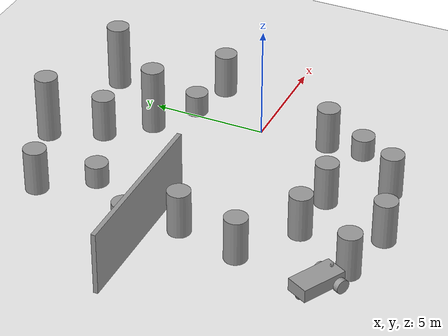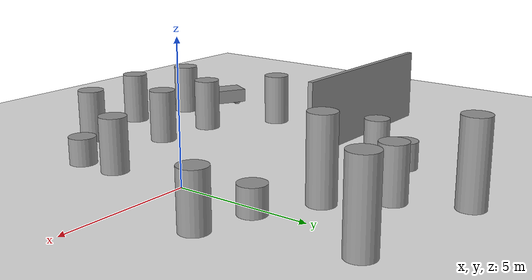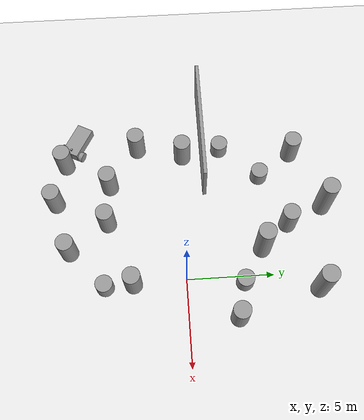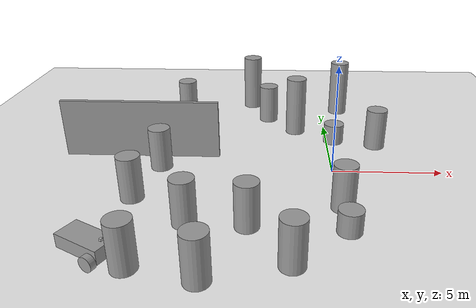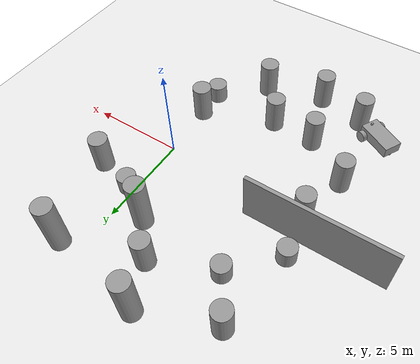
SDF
<sdf version="1.6">
 <world name="default">
  <model name="ground_plane">
   <static>1</static>
   <link name="link">
    <collision name="collision">
     <geometry><plane><normal>0 0 1</normal><size>100 100</size></plane></geometry>
     <surface><friction><ode><mu>100</mu><mu2>50</mu2></ode></friction></surface>
    </collision>
    <visual name="visual">
     <geometry><plane><normal>0 0 1</normal><size>100 100</size></plane></geometry>
     <material>
      <script><uri>file://media/materials/scripts/gazebo.material</uri><name>Gazebo/White</name></script>
     </material>
    </visual>
   </link>
  </model>
  <model name="unit_cylinder_5_clone">
   <link name="link">
    <inertial>
     <mass>1</mass>
     <inertia><ixx>0.145833</ixx><ixy>0</ixy><ixz>0</ixz><iyy>0.145833</iyy><iyz>0</iyz><izz>0.125</izz></inertia>
    </inertial>
    <visual name="visual">
     <geometry><cylinder><radius>0.5</radius><length>2</length></cylinder></geometry>
     <material>
      <script><name>Gazebo/Grey</name><uri>file://media/materials/scripts/gazebo.material</uri></script>
      <ambient>0.3 0.3 0.3 1</ambient>
      <diffuse>0.7 0.7 0.7 1</diffuse>
      <specular>0.01 0.01 0.01 1</specular>
      <emissive>0 0 0 1</emissive>
      <shader type="vertex"><normal_map>__default__</normal_map></shader>
     </material>
    </visual>
    <collision name="collision">
     <geometry><cylinder><radius>0.5</radius><length>2</length></cylinder></geometry>
     <surface>
      <friction>
       <ode><mu>1</mu><mu2>1</mu2><fdir1>0 0 0</fdir1><slip1>0</slip1><slip2>0</slip2></ode>
       <torsional>
        <coefficient>1</coefficient>
        <patch_radius>0</patch_radius>
        <surface_radius>0</surface_radius>
        <use_patch_radius>1</use_patch_radius>
        <ode><slip>0</slip></ode>
       </torsional>
      </friction>
      <bounce><restitution_coefficient>0</restitution_coefficient><threshold>1e+06</threshold></bounce>
      <contact>
       <collide_without_contact>0</collide_without_contact>
       <collide_without_contact_bitmask>1</collide_without_contact_bitmask>
       <collide_bitmask>1</collide_bitmask>
       <ode>
        <soft_cfm>0</soft_cfm>
        <soft_erp>0.2</soft_erp>
        <kp>1e+13</kp>
        <kd>1</kd>
        <max_vel>0.01</max_vel>
        <min_depth>0</min_depth>
       </ode>
       <bullet>
        <split_impulse>1</split_impulse>
        <split_impulse_penetration_threshold>-0.01</split_impulse_penetration_threshold>
        <soft_cfm>0</soft_cfm>
        <soft_erp>0.2</soft_erp>
        <kp>1e+13</kp>
        <kd>1</kd>
       </bullet>
      </contact>
     </surface>
    </collision>
   </link>
   <static>0</static>
   <pose>2.38828 2.78335 0.999884 2.2e-05 -1e-06 0.002315</pose>
  </model>
  <model name="unit_cylinder_5_clone_0">
   <link name="link">
    <inertial>
     <mass>1</mass>
     <inertia><ixx>0.145833</ixx><ixy>0</ixy><ixz>0</ixz><iyy>0.145833</iyy><iyz>0</iyz><izz>0.125</izz></inertia>
    </inertial>
    <visual name="visual">
     <geometry><cylinder><radius>0.5</radius><length>2</length></cylinder></geometry>
     <material>
      <script><name>Gazebo/Grey</name><uri>file://media/materials/scripts/gazebo.material</uri></script>
      <ambient>0.3 0.3 0.3 1</ambient>
      <diffuse>0.7 0.7 0.7 1</diffuse>
      <specular>0.01 0.01 0.01 1</specular>
      <emissive>0 0 0 1</emissive>
      <shader type="vertex"><normal_map>__default__</normal_map></shader>
     </material>
    </visual>
    <collision name="collision">
     <geometry><cylinder><radius>0.5</radius><length>2</length></cylinder></geometry>
     <surface>
      <friction>
       <ode><mu>1</mu><mu2>1</mu2><fdir1>0 0 0</fdir1><slip1>0</slip1><slip2>0</slip2></ode>
       <torsional>
        <coefficient>1</coefficient>
        <patch_radius>0</patch_radius>
        <surface_radius>0</surface_radius>
        <use_patch_radius>1</use_patch_radius>
        <ode><slip>0</slip></ode>
       </torsional>
      </friction>
      <bounce><restitution_coefficient>0</restitution_coefficient><threshold>1e+06</threshold></bounce>
      <contact>
       <collide_without_contact>0</collide_without_contact>
       <collide_without_contact_bitmask>1</collide_without_contact_bitmask>
       <collide_bitmask>1</collide_bitmask>
       <ode>
        <soft_cfm>0</soft_cfm>
        <soft_erp>0.2</soft_erp>
        <kp>1e+13</kp>
        <kd>1</kd>
        <max_vel>0.01</max_vel>
        <min_depth>0</min_depth>
       </ode>
       <bullet>
        <split_impulse>1</split_impulse>
        <split_impulse_penetration_threshold>-0.01</split_impulse_penetration_threshold>
        <soft_cfm>0</soft_cfm>
        <soft_erp>0.2</soft_erp>
        <kp>1e+13</kp>
        <kd>1</kd>
       </bullet>
      </contact>
     </surface>
    </collision>
   </link>
   <static>0</static>
   <pose>0.149287 -3.03613 0.999884 2.2e-05 -1e-06 0.002298</pose>
  </model>
  <model name="unit_cylinder_5_clone_3">
   <link name="link">
    <inertial>
     <mass>1</mass>
     <inertia><ixx>0.145833</ixx><ixy>0</ixy><ixz>0</ixz><iyy>0.145833</iyy><iyz>0</iyz><izz>0.125</izz></inertia>
    </inertial>
    <visual name="visual">
     <geometry><cylinder><radius>0.5</radius><length>2</length></cylinder></geometry>
     <material>
      <script><name>Gazebo/Grey</name><uri>file://media/materials/scripts/gazebo.material</uri></script>
      <ambient>0.3 0.3 0.3 1</ambient>
      <diffuse>0.7 0.7 0.7 1</diffuse>
      <specular>0.01 0.01 0.01 1</specular>
      <emissive>0 0 0 1</emissive>
      <shader type="vertex"><normal_map>__default__</normal_map></shader>
     </material>
    </visual>
    <collision name="collision">
     <geometry><cylinder><radius>0.5</radius><length>2</length></cylinder></geometry>
     <surface>
      <friction>
       <ode><mu>1</mu><mu2>1</mu2><fdir1>0 0 0</fdir1><slip1>0</slip1><slip2>0</slip2></ode>
       <torsional>
        <coefficient>1</coefficient>
        <patch_radius>0</patch_radius>
        <surface_radius>0</surface_radius>
        <use_patch_radius>1</use_patch_radius>
        <ode><slip>0</slip></ode>
       </torsional>
      </friction>
      <bounce><restitution_coefficient>0</restitution_coefficient><threshold>1e+06</threshold></bounce>
      <contact>
       <collide_without_contact>0</collide_without_contact>
       <collide_without_contact_bitmask>1</collide_without_contact_bitmask>
       <collide_bitmask>1</collide_bitmask>
       <ode>
        <soft_cfm>0</soft_cfm>
        <soft_erp>0.2</soft_erp>
        <kp>1e+13</kp>
        <kd>1</kd>
        <max_vel>0.01</max_vel>
        <min_depth>0</min_depth>
       </ode>
       <bullet>
        <split_impulse>1</split_impulse>
        <split_impulse_penetration_threshold>-0.01</split_impulse_penetration_threshold>
        <soft_cfm>0</soft_cfm>
        <soft_erp>0.2</soft_erp>
        <kp>1e+13</kp>
        <kd>1</kd>
       </bullet>
      </contact>
     </surface>
    </collision>
   </link>
   <static>0</static>
   <pose>-3.66733 -4.47285 0.999884 2.2e-05 -1e-06 0.000409</pose>
  </model>
  <model name="unit_cylinder_5_clone_4">
   <link name="link">
    <inertial>
     <mass>1</mass>
     <inertia><ixx>0.145833</ixx><ixy>0</ixy><ixz>0</ixz><iyy>0.145833</iyy><iyz>0</iyz><izz>0.125</izz></inertia>
    </inertial>
    <visual name="visual">
     <geometry><cylinder><radius>0.5</radius><length>2</length></cylinder></geometry>
     <material>
      <script><name>Gazebo/Grey</name><uri>file://media/materials/scripts/gazebo.material</uri></script>
      <ambient>0.3 0.3 0.3 1</ambient>
      <diffuse>0.7 0.7 0.7 1</diffuse>
      <specular>0.01 0.01 0.01 1</specular>
      <emissive>0 0 0 1</emissive>
      <shader type="vertex"><normal_map>__default__</normal_map></shader>
     </material>
    </visual>
    <collision name="collision">
     <geometry><cylinder><radius>0.5</radius><length>2</length></cylinder></geometry>
     <surface>
      <friction>
       <ode><mu>1</mu><mu2>1</mu2><fdir1>0 0 0</fdir1><slip1>0</slip1><slip2>0</slip2></ode>
       <torsional>
        <coefficient>1</coefficient>
        <patch_radius>0</patch_radius>
        <surface_radius>0</surface_radius>
        <use_patch_radius>1</use_patch_radius>
        <ode><slip>0</slip></ode>
       </torsional>
      </friction>
      <bounce><restitution_coefficient>0</restitution_coefficient><threshold>1e+06</threshold></bounce>
      <contact>
       <collide_without_contact>0</collide_without_contact>
       <collide_without_contact_bitmask>1</collide_without_contact_bitmask>
       <collide_bitmask>1</collide_bitmask>
       <ode>
        <soft_cfm>0</soft_cfm>
        <soft_erp>0.2</soft_erp>
        <kp>1e+13</kp>
        <kd>1</kd>
        <max_vel>0.01</max_vel>
        <min_depth>0</min_depth>
       </ode>
       <bullet>
        <split_impulse>1</split_impulse>
        <split_impulse_penetration_threshold>-0.01</split_impulse_penetration_threshold>
        <soft_cfm>0</soft_cfm>
        <soft_erp>0.2</soft_erp>
        <kp>1e+13</kp>
        <kd>1</kd>
       </bullet>
      </contact>
     </surface>
    </collision>
   </link>
   <static>0</static>
   <pose>-7.93374 0.169664 0.999884 2.2e-05 -1e-06 -0.003062</pose>
  </model>
  <model name="unit_cylinder_5_clone_5">
   <link name="link">
    <inertial>
     <mass>1</mass>
     <inertia><ixx>0.145833</ixx><ixy>0</ixy><ixz>0</ixz><iyy>0.145833</iyy><iyz>0</iyz><izz>0.125</izz></inertia>
    </inertial>
    <visual name="visual">
     <geometry><cylinder><radius>0.5</radius><length>2</length></cylinder></geometry>
     <material>
      <script><name>Gazebo/Grey</name><uri>file://media/materials/scripts/gazebo.material</uri></script>
      <ambient>0.3 0.3 0.3 1</ambient>
      <diffuse>0.7 0.7 0.7 1</diffuse>
      <specular>0.01 0.01 0.01 1</specular>
      <emissive>0 0 0 1</emissive>
      <shader type="vertex"><normal_map>__default__</normal_map></shader>
     </material>
    </visual>
    <collision name="collision">
     <geometry><cylinder><radius>0.5</radius><length>2</length></cylinder></geometry>
     <surface>
      <friction>
       <ode><mu>1</mu><mu2>1</mu2><fdir1>0 0 0</fdir1><slip1>0</slip1><slip2>0</slip2></ode>
       <torsional>
        <coefficient>1</coefficient>
        <patch_radius>0</patch_radius>
        <surface_radius>0</surface_radius>
        <use_patch_radius>1</use_patch_radius>
        <ode><slip>0</slip></ode>
       </torsional>
      </friction>
      <bounce><restitution_coefficient>0</restitution_coefficient><threshold>1e+06</threshold></bounce>
      <contact>
       <collide_without_contact>0</collide_without_contact>
       <collide_without_contact_bitmask>1</collide_without_contact_bitmask>
       <collide_bitmask>1</collide_bitmask>
       <ode>
        <soft_cfm>0</soft_cfm>
        <soft_erp>0.2</soft_erp>
        <kp>1e+13</kp>
        <kd>1</kd>
        <max_vel>0.01</max_vel>
        <min_depth>0</min_depth>
       </ode>
       <bullet>
        <split_impulse>1</split_impulse>
        <split_impulse_penetration_threshold>-0.01</split_impulse_penetration_threshold>
        <soft_cfm>0</soft_cfm>
        <soft_erp>0.2</soft_erp>
        <kp>1e+13</kp>
        <kd>1</kd>
       </bullet>
      </contact>
     </surface>
    </collision>
   </link>
   <static>0</static>
   <pose>-8.58869 -2.60629 0.999884 2.2e-05 -1e-06 -0.00547</pose>
  </model>
  <model name="unit_cylinder_0">
   <pose>0.360811 3.27692 0.499884 3e-06 -3e-06 -0.000418</pose>
   <link name="link">
    <inertial>
     <mass>1</mass>
     <inertia><ixx>0.145833</ixx><ixy>0</ixy><ixz>0</ixz><iyy>0.145833</iyy><iyz>0</iyz><izz>0.125</izz></inertia>
    </inertial>
    <collision name="collision">
     <geometry><cylinder><radius>0.5</radius><length>1</length></cylinder></geometry>
    </collision>
    <visual name="visual">
     <geometry><cylinder><radius>0.5</radius><length>1</length></cylinder></geometry>
     <material>
      <script><name>Gazebo/Grey</name><uri>file://media/materials/scripts/gazebo.material</uri></script>
     </material>
    </visual>
   </link>
  </model>
  <model name="unit_cylinder_1">
   <pose>0.210065 -4.63987 0.499884 3e-06 -3e-06 -0.000165</pose>
   <link name="link">
    <inertial>
     <mass>1</mass>
     <inertia><ixx>0.145833</ixx><ixy>0</ixy><ixz>0</ixz><iyy>0.145833</iyy><iyz>0</iyz><izz>0.125</izz></inertia>
    </inertial>
    <collision name="collision">
     <geometry><cylinder><radius>0.5</radius><length>1</length></cylinder></geometry>
    </collision>
    <visual name="visual">
     <geometry><cylinder><radius>0.5</radius><length>1</length></cylinder></geometry>
     <material>
      <script><name>Gazebo/Grey</name><uri>file://media/materials/scripts/gazebo.material</uri></script>
     </material>
    </visual>
   </link>
  </model>
  <model name="unit_cylinder_1_clone_0">
   <pose>-6.29638 4.76436 0.499972 -5.4e-05 5.5e-05 -0.000122</pose>
   <link name="link">
    <inertial>
     <mass>1</mass>
     <inertia><ixx>0.145833</ixx><ixy>0</ixy><ixz>0</ixz><iyy>0.145833</iyy><iyz>0</iyz><izz>0.125</izz></inertia>
    </inertial>
    <collision name="collision">
     <geometry><cylinder><radius>0.5</radius><length>1</length></cylinder></geometry>
    </collision>
    <visual name="visual">
     <geometry><cylinder><radius>0.5</radius><length>1</length></cylinder></geometry>
     <material>
      <script><name>Gazebo/Grey</name><uri>file://media/materials/scripts/gazebo.material</uri></script>
     </material>
    </visual>
   </link>
  </model>
  <model name="unit_cylinder_1_clone_1">
   <pose>-8.33577 2.47754 0.499972 -5.4e-05 5.5e-05 0.001407</pose>
   <link name="link">
    <inertial>
     <mass>1</mass>
     <inertia><ixx>0.145833</ixx><ixy>0</ixy><ixz>0</ixz><iyy>0.145833</iyy><iyz>0</iyz><izz>0.125</izz></inertia>
    </inertial>
    <collision name="collision">
     <geometry><cylinder><radius>0.5</radius><length>1</length></cylinder></geometry>
    </collision>
    <visual name="visual">
     <geometry><cylinder><radius>0.5</radius><length>1</length></cylinder></geometry>
     <material>
      <script><name>Gazebo/Grey</name><uri>file://media/materials/scripts/gazebo.material</uri></script>
     </material>
    </visual>
   </link>
  </model>
  <model name="unit_cylinder_5_clone_1_clone_0">
   <link name="link">
    <inertial>
     <mass>1</mass>
     <inertia><ixx>0.145833</ixx><ixy>0</ixy><ixz>0</ixz><iyy>0.145833</iyy><iyz>0</iyz><izz>0.125</izz></inertia>
    </inertial>
    <visual name="visual">
     <geometry><cylinder><radius>0.5</radius><length>2</length></cylinder></geometry>
     <material>
      <script><name>Gazebo/Grey</name><uri>file://media/materials/scripts/gazebo.material</uri></script>
      <ambient>0.3 0.3 0.3 1</ambient>
      <diffuse>0.7 0.7 0.7 1</diffuse>
      <specular>0.01 0.01 0.01 1</specular>
      <emissive>0 0 0 1</emissive>
      <shader type="vertex"><normal_map>__default__</normal_map></shader>
     </material>
    </visual>
    <collision name="collision">
     <geometry><cylinder><radius>0.5</radius><length>2</length></cylinder></geometry>
     <surface>
      <friction>
       <ode><mu>1</mu><mu2>1</mu2><fdir1>0 0 0</fdir1><slip1>0</slip1><slip2>0</slip2></ode>
       <torsional>
        <coefficient>1</coefficient>
        <patch_radius>0</patch_radius>
        <surface_radius>0</surface_radius>
        <use_patch_radius>1</use_patch_radius>
        <ode><slip>0</slip></ode>
       </torsional>
      </friction>
      <bounce><restitution_coefficient>0</restitution_coefficient><threshold>1e+06</threshold></bounce>
      <contact>
       <collide_without_contact>0</collide_without_contact>
       <collide_without_contact_bitmask>1</collide_without_contact_bitmask>
       <collide_bitmask>1</collide_bitmask>
       <ode>
        <soft_cfm>0</soft_cfm>
        <soft_erp>0.2</soft_erp>
        <kp>1e+13</kp>
        <kd>1</kd>
        <max_vel>0.01</max_vel>
        <min_depth>0</min_depth>
       </ode>
       <bullet>
        <split_impulse>1</split_impulse>
        <split_impulse_penetration_threshold>-0.01</split_impulse_penetration_threshold>
        <soft_cfm>0</soft_cfm>
        <soft_erp>0.2</soft_erp>
        <kp>1e+13</kp>
        <kd>1</kd>
       </bullet>
      </contact>
     </surface>
    </collision>
   </link>
   <static>0</static>
   <pose>-3.04049 6.13018 0.999884 2.2e-05 -1e-06 -0.001363</pose>
  </model>
  <model name="unit_cylinder_0_0_clone_clone">
   <link name="link">
    <inertial>
     <mass>1</mass>
     <inertia><ixx>0.145833</ixx><ixy>0</ixy><ixz>0</ixz><iyy>0.145833</iyy><iyz>0</iyz><izz>0.125</izz></inertia>
    </inertial>
    <visual name="visual">
     <geometry><cylinder><radius>0.5</radius><length>3</length></cylinder></geometry>
     <material>
      <script><name>Gazebo/Grey</name><uri>file://media/materials/scripts/gazebo.material</uri></script>
      <ambient>0.3 0.3 0.3 1</ambient>
      <diffuse>0.7 0.7 0.7 1</diffuse>
      <specular>0.01 0.01 0.01 1</specular>
      <emissive>0 0 0 1</emissive>
      <shader type="vertex"><normal_map>__default__</normal_map></shader>
     </material>
    </visual>
    <collision name="collision">
     <geometry><cylinder><radius>0.5</radius><length>3</length></cylinder></geometry>
     <surface>
      <friction>
       <ode><mu>1</mu><mu2>1</mu2><fdir1>0 0 0</fdir1><slip1>0</slip1><slip2>0</slip2></ode>
       <torsional>
        <coefficient>1</coefficient>
        <patch_radius>0</patch_radius>
        <surface_radius>0</surface_radius>
        <use_patch_radius>1</use_patch_radius>
        <ode><slip>0</slip></ode>
       </torsional>
      </friction>
      <bounce><restitution_coefficient>0</restitution_coefficient><threshold>1e+06</threshold></bounce>
      <contact>
       <collide_without_contact>0</collide_without_contact>
       <collide_without_contact_bitmask>1</collide_without_contact_bitmask>
       <collide_bitmask>1</collide_bitmask>
       <ode>
        <soft_cfm>0</soft_cfm>
        <soft_erp>0.2</soft_erp>
        <kp>1e+13</kp>
        <kd>1</kd>
        <max_vel>0.01</max_vel>
        <min_depth>0</min_depth>
       </ode>
       <bullet>
        <split_impulse>1</split_impulse>
        <split_impulse_penetration_threshold>-0.01</split_impulse_penetration_threshold>
        <soft_cfm>0</soft_cfm>
        <soft_erp>0.2</soft_erp>
        <kp>1e+13</kp>
        <kd>1</kd>
       </bullet>
      </contact>
     </surface>
    </collision>
   </link>
   <static>0</static>
   <pose>1.00231 7.45946 1.49988 4.7e-05 -4e-06 -0.006467</pose>
  </model>
  <model name="unit_cylinder_0_0_clone_clone_0">
   <link name="link">
    <inertial>
     <mass>1</mass>
     <inertia><ixx>0.145833</ixx><ixy>0</ixy><ixz>0</ixz><iyy>0.145833</iyy><iyz>0</iyz><izz>0.125</izz></inertia>
    </inertial>
    <visual name="visual">
     <geometry><cylinder><radius>0.5</radius><length>3</length></cylinder></geometry>
     <material>
      <script><name>Gazebo/Grey</name><uri>file://media/materials/scripts/gazebo.material</uri></script>
      <ambient>0.3 0.3 0.3 1</ambient>
      <diffuse>0.7 0.7 0.7 1</diffuse>
      <specular>0.01 0.01 0.01 1</specular>
      <emissive>0 0 0 1</emissive>
      <shader type="vertex"><normal_map>__default__</normal_map></shader>
     </material>
    </visual>
    <collision name="collision">
     <geometry><cylinder><radius>0.5</radius><length>3</length></cylinder></geometry>
     <surface>
      <friction>
       <ode><mu>1</mu><mu2>1</mu2><fdir1>0 0 0</fdir1><slip1>0</slip1><slip2>0</slip2></ode>
       <torsional>
        <coefficient>1</coefficient>
        <patch_radius>0</patch_radius>
        <surface_radius>0</surface_radius>
        <use_patch_radius>1</use_patch_radius>
        <ode><slip>0</slip></ode>
       </torsional>
      </friction>
      <bounce><restitution_coefficient>0</restitution_coefficient><threshold>1e+06</threshold></bounce>
      <contact>
       <collide_without_contact>0</collide_without_contact>
       <collide_without_contact_bitmask>1</collide_without_contact_bitmask>
       <collide_bitmask>1</collide_bitmask>
       <ode>
        <soft_cfm>0</soft_cfm>
        <soft_erp>0.2</soft_erp>
        <kp>1e+13</kp>
        <kd>1</kd>
        <max_vel>0.01</max_vel>
        <min_depth>0</min_depth>
       </ode>
       <bullet>
        <split_impulse>1</split_impulse>
        <split_impulse_penetration_threshold>-0.01</split_impulse_penetration_threshold>
        <soft_cfm>0</soft_cfm>
        <soft_erp>0.2</soft_erp>
        <kp>1e+13</kp>
        <kd>1</kd>
       </bullet>
      </contact>
     </surface>
    </collision>
   </link>
   <static>0</static>
   <pose>-4.03855 8.32066 1.49988 4.7e-05 -4e-06 -0.002883</pose>
  </model>
  <model name="unit_cylinder_0_0_clone_clone_1">
   <link name="link">
    <inertial>
     <mass>1</mass>
     <inertia><ixx>0.145833</ixx><ixy>0</ixy><ixz>0</ixz><iyy>0.145833</iyy><iyz>0</iyz><izz>0.125</izz></inertia>
    </inertial>
    <visual name="visual">
     <geometry><cylinder><radius>0.5</radius><length>3</length></cylinder></geometry>
     <material>
      <script><name>Gazebo/Grey</name><uri>file://media/materials/scripts/gazebo.material</uri></script>
      <ambient>0.3 0.3 0.3 1</ambient>
      <diffuse>0.7 0.7 0.7 1</diffuse>
      <specular>0.01 0.01 0.01 1</specular>
      <emissive>0 0 0 1</emissive>
      <shader type="vertex"><normal_map>__default__</normal_map></shader>
     </material>
    </visual>
    <collision name="collision">
     <geometry><cylinder><radius>0.5</radius><length>3</length></cylinder></geometry>
     <surface>
      <friction>
       <ode><mu>1</mu><mu2>1</mu2><fdir1>0 0 0</fdir1><slip1>0</slip1><slip2>0</slip2></ode>
       <torsional>
        <coefficient>1</coefficient>
        <patch_radius>0</patch_radius>
        <surface_radius>0</surface_radius>
        <use_patch_radius>1</use_patch_radius>
        <ode><slip>0</slip></ode>
       </torsional>
      </friction>
      <bounce><restitution_coefficient>0</restitution_coefficient><threshold>1e+06</threshold></bounce>
      <contact>
       <collide_without_contact>0</collide_without_contact>
       <collide_without_contact_bitmask>1</collide_without_contact_bitmask>
       <collide_bitmask>1</collide_bitmask>
       <ode>
        <soft_cfm>0</soft_cfm>
        <soft_erp>0.2</soft_erp>
        <kp>1e+13</kp>
        <kd>1</kd>
        <max_vel>0.01</max_vel>
        <min_depth>0</min_depth>
       </ode>
       <bullet>
        <split_impulse>1</split_impulse>
        <split_impulse_penetration_threshold>-0.01</split_impulse_penetration_threshold>
        <soft_cfm>0</soft_cfm>
        <soft_erp>0.2</soft_erp>
        <kp>1e+13</kp>
        <kd>1</kd>
       </bullet>
      </contact>
     </surface>
    </collision>
   </link>
   <static>0</static>
   <pose>-1.56798 4.46718 1.49988 4.7e-05 4e-06 0.003118</pose>
  </model>
  <model name="unit_cylinder_5_clone_0_clone_1">
   <link name="link">
    <inertial>
     <mass>1</mass>
     <inertia><ixx>0.145833</ixx><ixy>0</ixy><ixz>0</ixz><iyy>0.145833</iyy><iyz>0</iyz><izz>0.125</izz></inertia>
    </inertial>
    <visual name="visual">
     <geometry><cylinder><radius>0.5</radius><length>2</length></cylinder></geometry>
     <material>
      <script><name>Gazebo/Grey</name><uri>file://media/materials/scripts/gazebo.material</uri></script>
      <ambient>0.3 0.3 0.3 1</ambient>
      <diffuse>0.7 0.7 0.7 1</diffuse>
      <specular>0.01 0.01 0.01 1</specular>
      <emissive>0 0 0 1</emissive>
      <shader type="vertex"><normal_map>__default__</normal_map></shader>
     </material>
    </visual>
    <collision name="collision">
     <geometry><cylinder><radius>0.5</radius><length>2</length></cylinder></geometry>
     <surface>
      <friction>
       <ode><mu>1</mu><mu2>1</mu2><fdir1>0 0 0</fdir1><slip1>0</slip1><slip2>0</slip2></ode>
       <torsional>
        <coefficient>1</coefficient>
        <patch_radius>0</patch_radius>
        <surface_radius>0</surface_radius>
        <use_patch_radius>1</use_patch_radius>
        <ode><slip>0</slip></ode>
       </torsional>
      </friction>
      <bounce><restitution_coefficient>0</restitution_coefficient><threshold>1e+06</threshold></bounce>
      <contact>
       <collide_without_contact>0</collide_without_contact>
       <collide_without_contact_bitmask>1</collide_without_contact_bitmask>
       <collide_bitmask>1</collide_bitmask>
       <ode>
        <soft_cfm>0</soft_cfm>
        <soft_erp>0.2</soft_erp>
        <kp>1e+13</kp>
        <kd>1</kd>
        <max_vel>0.01</max_vel>
        <min_depth>0</min_depth>
       </ode>
       <bullet>
        <split_impulse>1</split_impulse>
        <split_impulse_penetration_threshold>-0.01</split_impulse_penetration_threshold>
        <soft_cfm>0</soft_cfm>
        <soft_erp>0.2</soft_erp>
        <kp>1e+13</kp>
        <kd>1</kd>
       </bullet>
      </contact>
     </surface>
    </collision>
   </link>
   <static>0</static>
   <pose>-1.98793 -6.68673 0.999884 2.2e-05 -1e-06 0.00217</pose>
  </model>
  <model name="unit_cylinder_5_clone_0_clone_6">
   <link name="link">
    <inertial>
     <mass>1</mass>
     <inertia><ixx>0.145833</ixx><ixy>0</ixy><ixz>0</ixz><iyy>0.145833</iyy><iyz>0</iyz><izz>0.125</izz></inertia>
    </inertial>
    <visual name="visual">
     <geometry><cylinder><radius>0.5</radius><length>2</length></cylinder></geometry>
     <material>
      <script><name>Gazebo/Grey</name><uri>file://media/materials/scripts/gazebo.material</uri></script>
      <ambient>0.3 0.3 0.3 1</ambient>
      <diffuse>0.7 0.7 0.7 1</diffuse>
      <specular>0.01 0.01 0.01 1</specular>
      <emissive>0 0 0 1</emissive>
      <shader type="vertex"><normal_map>__default__</normal_map></shader>
     </material>
    </visual>
    <collision name="collision">
     <geometry><cylinder><radius>0.5</radius><length>2</length></cylinder></geometry>
     <surface>
      <friction>
       <ode><mu>1</mu><mu2>1</mu2><fdir1>0 0 0</fdir1><slip1>0</slip1><slip2>0</slip2></ode>
       <torsional>
        <coefficient>1</coefficient>
        <patch_radius>0</patch_radius>
        <surface_radius>0</surface_radius>
        <use_patch_radius>1</use_patch_radius>
        <ode><slip>0</slip></ode>
       </torsional>
      </friction>
      <bounce><restitution_coefficient>0</restitution_coefficient><threshold>1e+06</threshold></bounce>
      <contact>
       <collide_without_contact>0</collide_without_contact>
       <collide_without_contact_bitmask>1</collide_without_contact_bitmask>
       <collide_bitmask>1</collide_bitmask>
       <ode>
        <soft_cfm>0</soft_cfm>
        <soft_erp>0.2</soft_erp>
        <kp>1e+13</kp>
        <kd>1</kd>
        <max_vel>0.01</max_vel>
        <min_depth>0</min_depth>
       </ode>
       <bullet>
        <split_impulse>1</split_impulse>
        <split_impulse_penetration_threshold>-0.01</split_impulse_penetration_threshold>
        <soft_cfm>0</soft_cfm>
        <soft_erp>0.2</soft_erp>
        <kp>1e+13</kp>
        <kd>1</kd>
       </bullet>
      </contact>
     </surface>
    </collision>
   </link>
   <static>0</static>
   <pose>-7.74649 6.83601 0.999884 2.2e-05 -1e-06 0.001447</pose>
  </model>
  <model name="unit_cylinder_5_clone_0_clone_7">
   <link name="link">
    <inertial>
     <mass>1</mass>
     <inertia><ixx>0.145833</ixx><ixy>0</ixy><ixz>0</ixz><iyy>0.145833</iyy><iyz>0</iyz><izz>0.125</izz></inertia>
    </inertial>
    <visual name="visual">
     <geometry><cylinder><radius>0.5</radius><length>2</length></cylinder></geometry>
     <material>
      <script><name>Gazebo/Grey</name><uri>file://media/materials/scripts/gazebo.material</uri></script>
      <ambient>0.3 0.3 0.3 1</ambient>
      <diffuse>0.7 0.7 0.7 1</diffuse>
      <specular>0.01 0.01 0.01 1</specular>
      <emissive>0 0 0 1</emissive>
      <shader type="vertex"><normal_map>__default__</normal_map></shader>
     </material>
    </visual>
    <collision name="collision">
     <geometry><cylinder><radius>0.5</radius><length>2</length></cylinder></geometry>
     <surface>
      <friction>
       <ode><mu>1</mu><mu2>1</mu2><fdir1>0 0 0</fdir1><slip1>0</slip1><slip2>0</slip2></ode>
       <torsional>
        <coefficient>1</coefficient>
        <patch_radius>0</patch_radius>
        <surface_radius>0</surface_radius>
        <use_patch_radius>1</use_patch_radius>
        <ode><slip>0</slip></ode>
       </torsional>
      </friction>
      <bounce><restitution_coefficient>0</restitution_coefficient><threshold>1e+06</threshold></bounce>
      <contact>
       <collide_without_contact>0</collide_without_contact>
       <collide_without_contact_bitmask>1</collide_without_contact_bitmask>
       <collide_bitmask>1</collide_bitmask>
       <ode>
        <soft_cfm>0</soft_cfm>
        <soft_erp>0.2</soft_erp>
        <kp>1e+13</kp>
        <kd>1</kd>
        <max_vel>0.01</max_vel>
        <min_depth>0</min_depth>
       </ode>
       <bullet>
        <split_impulse>1</split_impulse>
        <split_impulse_penetration_threshold>-0.01</split_impulse_penetration_threshold>
        <soft_cfm>0</soft_cfm>
        <soft_erp>0.2</soft_erp>
        <kp>1e+13</kp>
        <kd>1</kd>
       </bullet>
      </contact>
     </surface>
    </collision>
   </link>
   <static>0</static>
   <pose>-6.09067 -4.32212 0.999884 2.2e-05 -1e-06 0.000922</pose>
  </model>
  <model name="unit_cylinder_5_clone_0_clone_8">
   <link name="link">
    <inertial>
     <mass>1</mass>
     <inertia><ixx>0.145833</ixx><ixy>0</ixy><ixz>0</ixz><iyy>0.145833</iyy><iyz>0</iyz><izz>0.125</izz></inertia>
    </inertial>
    <visual name="visual">
     <geometry><cylinder><radius>0.5</radius><length>2</length></cylinder></geometry>
     <material>
      <script><name>Gazebo/Grey</name><uri>file://media/materials/scripts/gazebo.material</uri></script>
      <ambient>0.3 0.3 0.3 1</ambient>
      <diffuse>0.7 0.7 0.7 1</diffuse>
      <specular>0.01 0.01 0.01 1</specular>
      <emissive>0 0 0 1</emissive>
      <shader type="vertex"><normal_map>__default__</normal_map></shader>
     </material>
    </visual>
    <collision name="collision">
     <geometry><cylinder><radius>0.5</radius><length>2</length></cylinder></geometry>
     <surface>
      <friction>
       <ode><mu>1</mu><mu2>1</mu2><fdir1>0 0 0</fdir1><slip1>0</slip1><slip2>0</slip2></ode>
       <torsional>
        <coefficient>1</coefficient>
        <patch_radius>0</patch_radius>
        <surface_radius>0</surface_radius>
        <use_patch_radius>1</use_patch_radius>
        <ode><slip>0</slip></ode>
       </torsional>
      </friction>
      <bounce><restitution_coefficient>0</restitution_coefficient><threshold>1e+06</threshold></bounce>
      <contact>
       <collide_without_contact>0</collide_without_contact>
       <collide_without_contact_bitmask>1</collide_without_contact_bitmask>
       <collide_bitmask>1</collide_bitmask>
       <ode>
        <soft_cfm>0</soft_cfm>
        <soft_erp>0.2</soft_erp>
        <kp>1e+13</kp>
        <kd>1</kd>
        <max_vel>0.01</max_vel>
        <min_depth>0</min_depth>
       </ode>
       <bullet>
        <split_impulse>1</split_impulse>
        <split_impulse_penetration_threshold>-0.01</split_impulse_penetration_threshold>
        <soft_cfm>0</soft_cfm>
        <soft_erp>0.2</soft_erp>
        <kp>1e+13</kp>
        <kd>1</kd>
       </bullet>
      </contact>
     </surface>
    </collision>
   </link>
   <static>0</static>
   <pose>-7.67513 -7.00939 0.999884 2.2e-05 -1e-06 0.000229</pose>
  </model>
  <model name="unit_cylinder_5_clone_0_clone_9">
   <link name="link">
    <inertial>
     <mass>1</mass>
     <inertia><ixx>0.145833</ixx><ixy>0</ixy><ixz>0</ixz><iyy>0.145833</iyy><iyz>0</iyz><izz>0.125</izz></inertia>
    </inertial>
    <visual name="visual">
     <geometry><cylinder><radius>0.5</radius><length>2</length></cylinder></geometry>
     <material>
      <script><name>Gazebo/Grey</name><uri>file://media/materials/scripts/gazebo.material</uri></script>
      <ambient>0.3 0.3 0.3 1</ambient>
      <diffuse>0.7 0.7 0.7 1</diffuse>
      <specular>0.01 0.01 0.01 1</specular>
      <emissive>0 0 0 1</emissive>
      <shader type="vertex"><normal_map>__default__</normal_map></shader>
     </material>
    </visual>
    <collision name="collision">
     <geometry><cylinder><radius>0.5</radius><length>2</length></cylinder></geometry>
     <surface>
      <friction>
       <ode><mu>1</mu><mu2>1</mu2><fdir1>0 0 0</fdir1><slip1>0</slip1><slip2>0</slip2></ode>
       <torsional>
        <coefficient>1</coefficient>
        <patch_radius>0</patch_radius>
        <surface_radius>0</surface_radius>
        <use_patch_radius>1</use_patch_radius>
        <ode><slip>0</slip></ode>
       </torsional>
      </friction>
      <bounce><restitution_coefficient>0</restitution_coefficient><threshold>1e+06</threshold></bounce>
      <contact>
       <collide_without_contact>0</collide_without_contact>
       <collide_without_contact_bitmask>1</collide_without_contact_bitmask>
       <collide_bitmask>1</collide_bitmask>
       <ode>
        <soft_cfm>0</soft_cfm>
        <soft_erp>0.2</soft_erp>
        <kp>1e+13</kp>
        <kd>1</kd>
        <max_vel>0.01</max_vel>
        <min_depth>0</min_depth>
       </ode>
       <bullet>
        <split_impulse>1</split_impulse>
        <split_impulse_penetration_threshold>-0.01</split_impulse_penetration_threshold>
        <soft_cfm>0</soft_cfm>
        <soft_erp>0.2</soft_erp>
        <kp>1e+13</kp>
        <kd>1</kd>
       </bullet>
      </contact>
     </surface>
    </collision>
   </link>
   <static>0</static>
   <pose>-5.11629 -7.54674 0.999884 2.2e-05 -1e-06 0.000681</pose>
  </model>
  <model name="follower_vehicle">
   <pose>-9.02897 -6.33627 0.324996 9e-06 3e-06 -0.490268</pose>
   <link name="chassis">
    <pose>-0.151427 -0 0.175 0 -0 0</pose>
    <inertial>
     <mass>1.14395</mass>
     <inertia>
      <ixx>0.126164</ixx>
      <ixy>0</ixy>
      <ixz>0</ixz>
      <iyy>0.416519</iyy>
      <iyz>0</iyz>
      <izz>0.481014</izz>
     </inertia>
    </inertial>
    <visual name="visual">
     <geometry><box><size>2.01142 1 0.568726</size></box></geometry>
     <material>
      <script><uri>file://media/materials/scripts/gazebo.material</uri><name>Gazebo/Grey</name></script>
     </material>
    </visual>
    <collision name="collision">
     <geometry><box><size>2.01142 1 0.568726</size></box></geometry>
     <surface>
      <friction><ode><mu>1</mu><mu2>1</mu2><fdir1>0 0 0</fdir1><slip1>0</slip1><slip2>0</slip2></ode></friction>
      <bounce><restitution_coefficient>0</restitution_coefficient><threshold>1e+06</threshold></bounce>
      <contact>
       <collide_without_contact>0</collide_without_contact>
       <collide_without_contact_bitmask>1</collide_without_contact_bitmask>
       <collide_bitmask>1</collide_bitmask>
       <ode>
        <soft_cfm>0</soft_cfm>
        <soft_erp>0.2</soft_erp>
        <kp>1e+13</kp>
        <kd>1</kd>
        <max_vel>0.01</max_vel>
        <min_depth>0</min_depth>
       </ode>
      </contact>
     </surface>
    </collision>
   </link>
   <link name="wheel_1">
    <pose>0.554283 0.625029 -0.025 1.5707 -0 0</pose>
    <inertial>
     <mass>2</mass>
     <inertia><ixx>0.145833</ixx><ixy>0</ixy><ixz>0</ixz><iyy>0.145833</iyy><iyz>0</iyz><izz>0.125</izz></inertia>
    </inertial>
    <visual name="visual">
     <geometry><cylinder><radius>0.3</radius><length>0.25</length></cylinder></geometry>
     <material>
      <script><uri>file://media/materials/scripts/gazebo.material</uri><name>Gazebo/Grey</name></script>
     </material>
    </visual>
    <collision name="collision">
     <geometry><cylinder><radius>0.3</radius><length>0.25</length></cylinder></geometry>
     <surface>
      <friction><ode><mu>1</mu><mu2>1</mu2><fdir1>0 0 0</fdir1><slip1>0</slip1><slip2>0</slip2></ode></friction>
      <bounce><restitution_coefficient>0</restitution_coefficient><threshold>1e+06</threshold></bounce>
      <contact>
       <collide_without_contact>0</collide_without_contact>
       <collide_without_contact_bitmask>1</collide_without_contact_bitmask>
       <collide_bitmask>1</collide_bitmask>
       <ode>
        <soft_cfm>0</soft_cfm>
        <soft_erp>0.2</soft_erp>
        <kp>1e+13</kp>
        <kd>1</kd>
        <max_vel>0.01</max_vel>
        <min_depth>0</min_depth>
       </ode>
      </contact>
     </surface>
    </collision>
   </link>
   <link name="wheel_2">
    <pose>0.554282 -0.625029 -0.025 1.5707 -0 0</pose>
    <inertial>
     <mass>2</mass>
     <inertia><ixx>0.145833</ixx><ixy>0</ixy><ixz>0</ixz><iyy>0.145833</iyy><iyz>0</iyz><izz>0.125</izz></inertia>
    </inertial>
    <visual name="visual">
     <geometry><cylinder><radius>0.3</radius><length>0.25</length></cylinder></geometry>
     <material>
      <script><uri>file://media/materials/scripts/gazebo.material</uri><name>Gazebo/Grey</name></script>
     </material>
    </visual>
    <collision name="collision">
     <geometry><cylinder><radius>0.3</radius><length>0.25</length></cylinder></geometry>
     <surface>
      <friction><ode><mu>1</mu><mu2>1</mu2><fdir1>0 0 0</fdir1><slip1>0</slip1><slip2>0</slip2></ode></friction>
      <bounce><restitution_coefficient>0</restitution_coefficient><threshold>1e+06</threshold></bounce>
      <contact>
       <collide_without_contact>0</collide_without_contact>
       <collide_without_contact_bitmask>1</collide_without_contact_bitmask>
       <collide_bitmask>1</collide_bitmask>
       <ode>
        <soft_cfm>0</soft_cfm>
        <soft_erp>0.2</soft_erp>
        <kp>1e+13</kp>
        <kd>1</kd>
        <max_vel>0.01</max_vel>
        <min_depth>0</min_depth>
       </ode>
      </contact>
     </surface>
    </collision>
   </link>
   <link name="caster">
    <pose>-0.957138 -0 -0.125 0 -0 0</pose>
    <inertial>
     <mass>1</mass>
     <inertia><ixx>0.1</ixx><ixy>0</ixy><ixz>0</ixz><iyy>0.1</iyy><iyz>0</iyz><izz>0.1</izz></inertia>
    </inertial>
    <visual name="visual">
     <geometry><sphere><radius>0.2</radius></sphere></geometry>
     <material>
      <script><uri>file://media/materials/scripts/gazebo.material</uri><name>Gazebo/Grey</name></script>
     </material>
    </visual>
    <collision name="collision">
     <geometry><sphere><radius>0.2</radius></sphere></geometry>
     <surface>
      <friction><ode><mu>1</mu><mu2>1</mu2><fdir1>0 0 0</fdir1><slip1>0</slip1><slip2>0</slip2></ode></friction>
      <bounce><restitution_coefficient>0</restitution_coefficient><threshold>1e+06</threshold></bounce>
      <contact>
       <collide_without_contact>0</collide_without_contact>
       <collide_without_contact_bitmask>1</collide_without_contact_bitmask>
       <collide_bitmask>1</collide_bitmask>
       <ode>
        <soft_cfm>0</soft_cfm>
        <soft_erp>0.2</soft_erp>
        <kp>1e+13</kp>
        <kd>1</kd>
        <max_vel>0.01</max_vel>
        <min_depth>0</min_depth>
       </ode>
      </contact>
     </surface>
    </collision>
   </link>
   <model name="depth_camera">
    <link name="link">
     <pose>0.05 0.05 0.05 0 -0 0</pose>
     <inertial>
      <mass>0.1</mass>
      <inertia>
       <ixx>0.000166667</ixx>
       <iyy>0.000166667</iyy>
       <izz>0.000166667</izz>
       <ixy>0</ixy>
       <ixz>0</ixz>
       <iyz>0</iyz>
      </inertia>
     </inertial>
     <collision name="collision"><geometry><box><size>0.1 0.1 0.1</size></box></geometry></collision>
     <visual name="visual"><geometry><box><size>0.1 0.1 0.1</size></box></geometry></visual>
     <sensor name="camera" type="depth">
      <camera name="depth">
       <horizontal_fov>1.047</horizontal_fov>
       <image><width>320</width><height>240</height></image>
       <clip><near>0.1</near><far>100</far></clip>
      </camera>
      <always_on>1</always_on>
      <update_rate>30</update_rate>
      <visualize>1</visualize>
     </sensor>
    </link>
    <pose>0.569632 -0.03223 0.502056 0 -0 0</pose>
   </model>
   <joint name="chassis_wheel_1_revolute" type="revolute">
    <parent>chassis</parent>
    <child>wheel_1</child>
    <axis>
     <xyz>0 0 1</xyz>
     <use_parent_model_frame>0</use_parent_model_frame>
     <limit>
      <lower>-1.79769e+308</lower>
      <upper>1.79769e+308</upper>
      <effort>-1</effort>
      <velocity>-1</velocity>
     </limit>
     <dynamics>
      <spring_reference>0</spring_reference>
      <spring_stiffness>0</spring_stiffness>
      <damping>0</damping>
      <friction>0</friction>
     </dynamics>
    </axis>
    <physics>
     <ode><limit><cfm>0</cfm><erp>0.2</erp></limit><suspension><cfm>0</cfm><erp>0.2</erp></suspension></ode>
    </physics>
   </joint>
   <joint name="chassis_wheel_2_revolute" type="revolute">
    <parent>chassis</parent>
    <child>wheel_2</child>
    <axis>
     <xyz>0 0 1</xyz>
     <use_parent_model_frame>0</use_parent_model_frame>
     <limit>
      <lower>-1.79769e+308</lower>
      <upper>1.79769e+308</upper>
      <effort>-1</effort>
      <velocity>-1</velocity>
     </limit>
     <dynamics>
      <spring_reference>0</spring_reference>
      <spring_stiffness>0</spring_stiffness>
      <damping>0</damping>
      <friction>0</friction>
     </dynamics>
    </axis>
    <physics>
     <ode><limit><cfm>0</cfm><erp>0.2</erp></limit><suspension><cfm>0</cfm><erp>0.2</erp></suspension></ode>
    </physics>
   </joint>
   <joint name="chassis_caster_ball" type="ball">
    <parent>chassis</parent>
    <child>caster</child>
    <physics>
     <ode><limit><cfm>0</cfm><erp>0.2</erp></limit><suspension><cfm>0</cfm><erp>0.2</erp></suspension></ode>
    </physics>
   </joint>
   <joint name="chassis_depth_camera_link_fixed" type="fixed">
    <parent>chassis</parent>
    <child>depth_camera::link</child>
    <physics>
     <ode><limit><cfm>0</cfm><erp>0.2</erp></limit><suspension><cfm>0</cfm><erp>0.2</erp></suspension></ode>
    </physics>
   </joint>
   <static>0</static>
   <plugin name="follower" filename="libFollowerPlugin.so"/>
  </model>
  <model name="grey_wall">
   <static>1</static>
   <link name="link">
    <pose>0 0 1.4 0 -0 0</pose>
    <collision name="collision"><geometry><box><size>7.5 0.2 2.8</size></box></geometry></collision>
    <visual name="visual">
     <cast_shadows>0</cast_shadows>
     <geometry><box><size>7.5 0.2 2.8</size></box></geometry>
     <material>
      <script>
       <uri>model://grey_wall/materials/scripts</uri>
       <uri>model://grey_wall/materials/textures</uri>
       <name>vrc/grey_wall</name>
      </script>
     </material>
    </visual>
   </link>
   <pose>-9.09611 1.37593 0 0 -0 0</pose>
  </model>
 </world>
</sdf>
